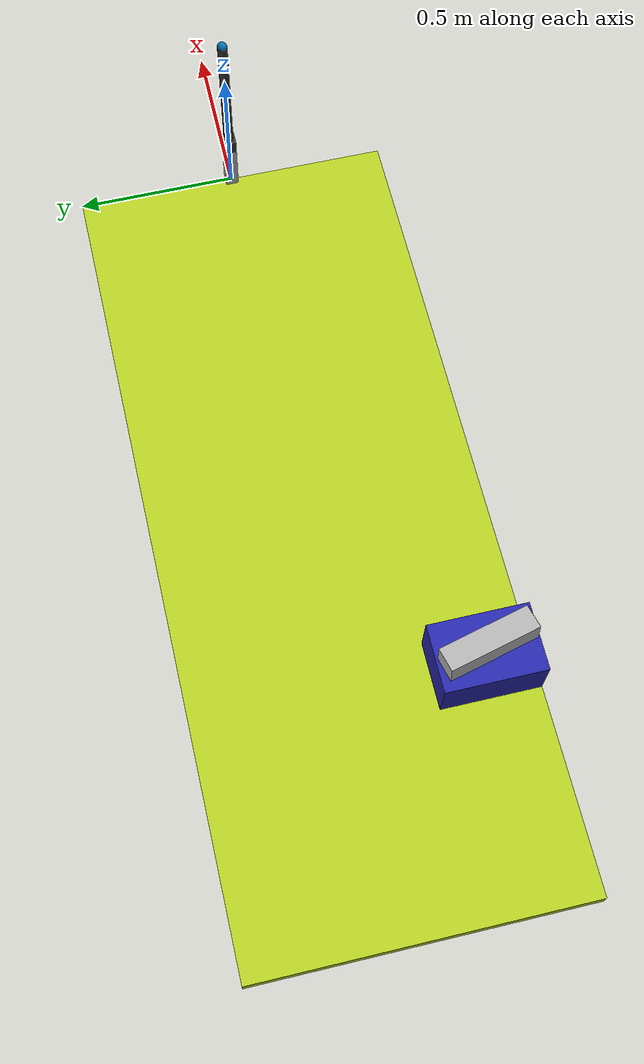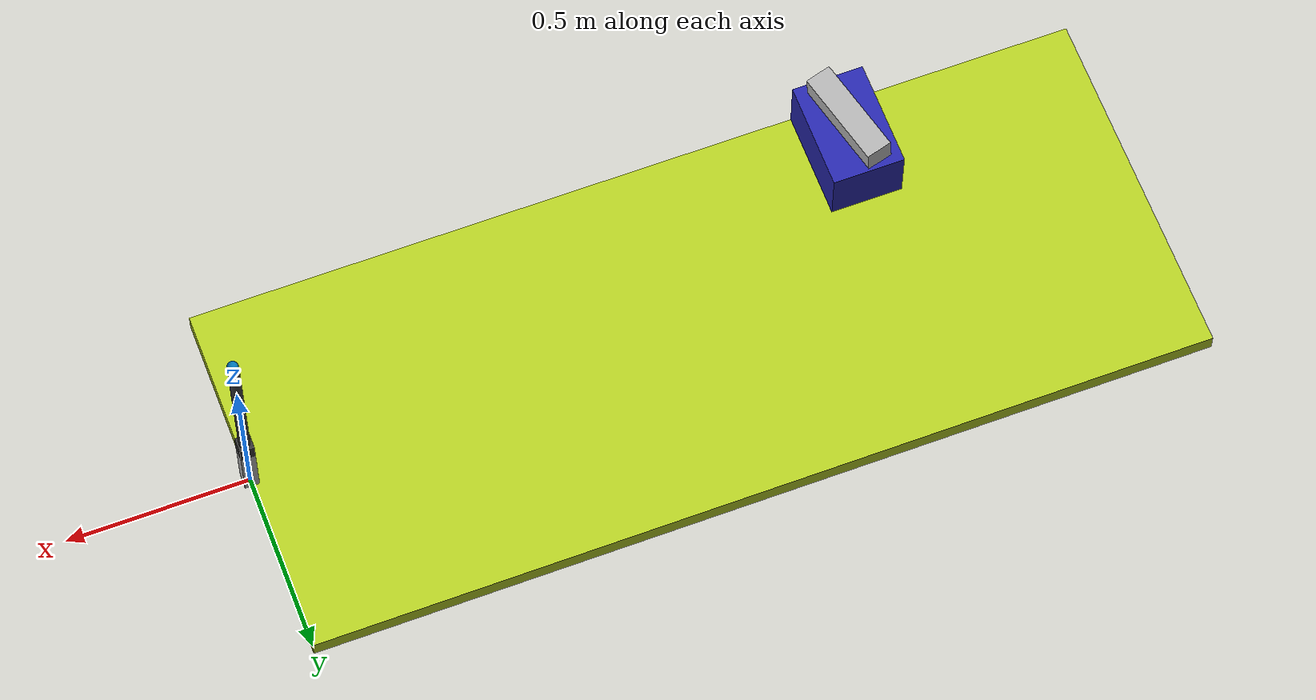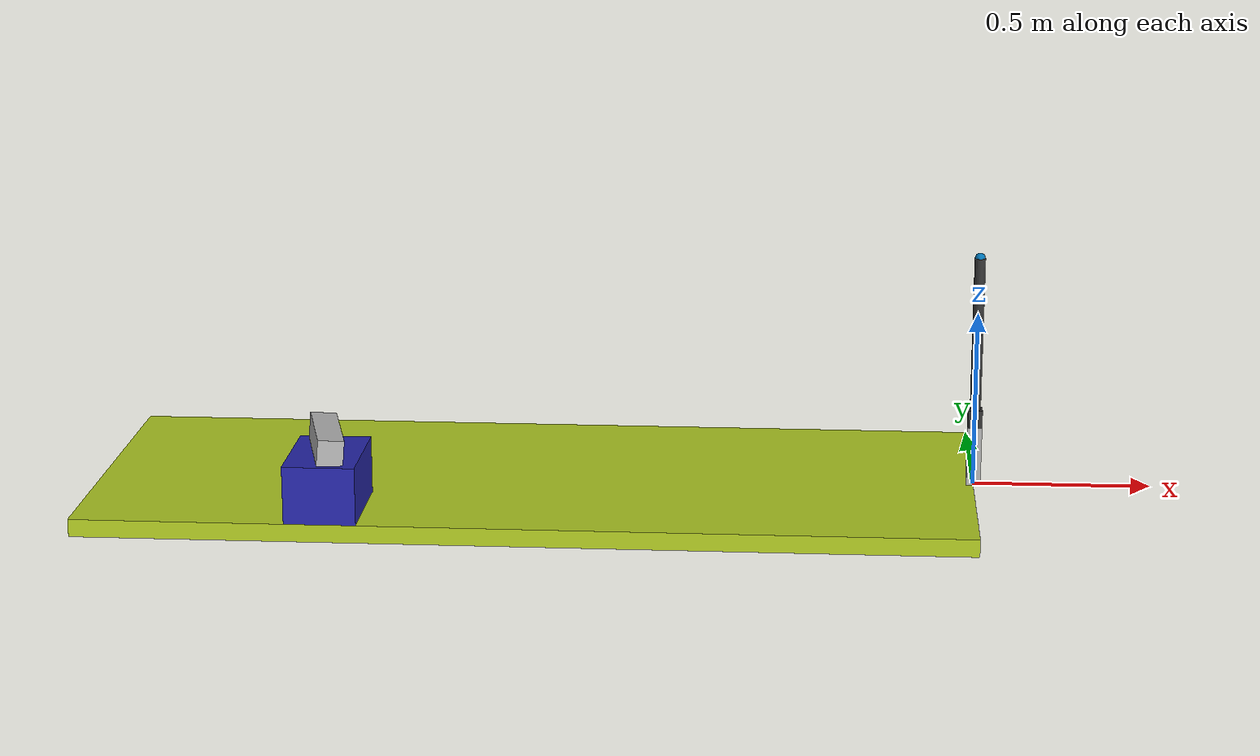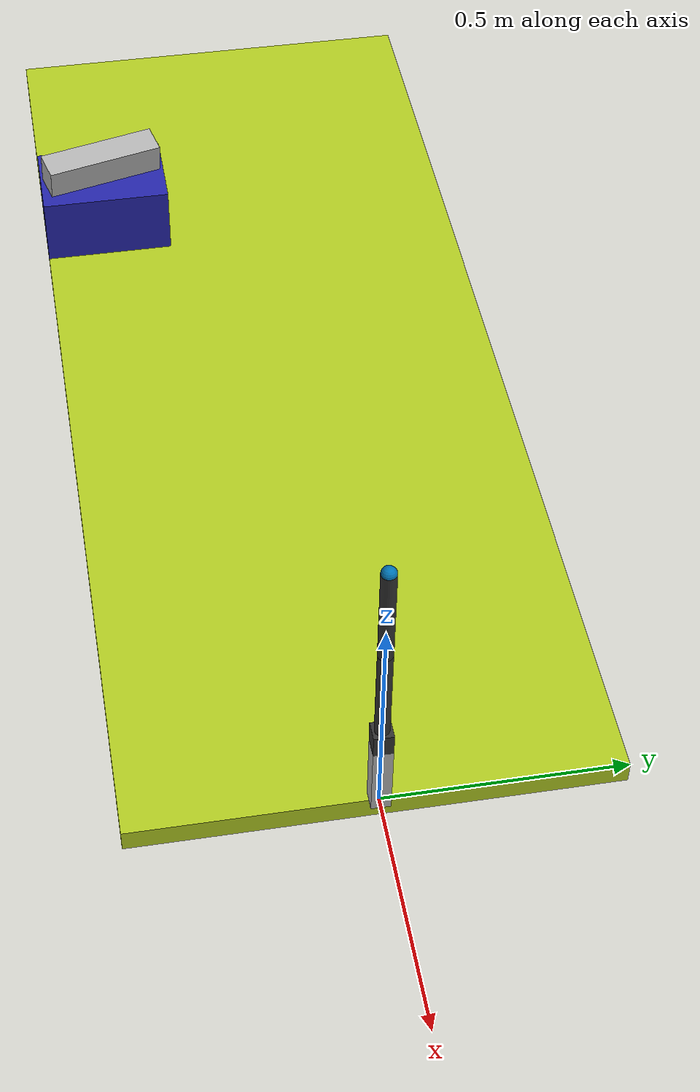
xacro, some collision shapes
<?xml version="1.0"?>
<robot name="icarus" xmlns:xacro="http://ros.org/wiki/xacro">

    <xacro:property name="M_PI" value="3.14159" />

    <!-- Robot Params -->
    <xacro:property name="base_width" value="0.04" />
    <xacro:property name="base_height" value="0.17" />
    <xacro:property name="link_radius" value="0.015" />
    <xacro:property name="link1_length" value="0.05" />
    <xacro:property name="link2_length" value="0.22" />
    <xacro:property name="link3_length" value="0.22" />

    <!-- Kinect Params -->
    <xacro:property name="cam_px" value="-1.8" />
    <xacro:property name="cam_py" value="-0.35" />
    <xacro:property name="cam_pz" value="0.2" />
    <xacro:property name="cam_or" value="0.0" />
    <xacro:property name="cam_op" value="${5.0*M_PI/180}" />
    <xacro:property name="cam_oy" value="0.244" />
    <xacro:property name="kinect_height" value="0.073" />

    <!-- Table Params -->
    <xacro:property name="table_thickness" value="0.05" />
    <xacro:property name="table_length" value="2.5" />
    <xacro:property name="table_width" value="1.0" />

    <!-- Macros -->
    <xacro:macro name="material_color" params="name rgba">
        <material name="${name}">
            <color rgba="${rgba}" />
        </material>
    </xacro:macro>

    <xacro:material_color name="default" rgba="0.7 0.7 0.7 1.0" />

    <!-- Robot Arm -->
    <link name="base_link">
        <visual>
            <origin xyz="0 0 ${base_height/2}" />
            <geometry>
                <box size="${base_width} ${base_width} ${base_height}" />
            </geometry>
            <material name="default" />
        </visual>
    </link>

    <joint name="base_to_link1" type="revolute">
        <axis xyz="0 0 1" rpy="0 0 ${M_PI}"/>
        <limit effort="1000.0" lower="${-M_PI/2}" upper="${M_PI/2}" velocity="0.5" />
        <origin xyz="0 0 ${base_height}" />
        <parent link="base_link" />
        <child link="link1" />
    </joint>

    <link name="link1">
        <visual>
            <origin xyz="0 0 ${link1_length/2}" />
            <geometry>
                <box size="0.04 0.04 ${link1_length}" />
            </geometry>
            <xacro:material_color name="black" rgba="0.2 0.2 0.2 1.0" />
        </visual>
    </link>

    <joint name="link1_to_link2" type="revolute">
        <axis xyz="0 1 0" />
        <limit effort="1000.0" lower="${-3/4*M_PI}" upper="${3/4*M_PI}" velocity="0.5" />
        <origin xyz="0 0 ${link1_length}" />
        <parent link="link1" />
        <child link="link2" />
    </joint>

    <link name="link2">
        <visual>
            <origin xyz="0 0 ${link2_length/2}" />
            <geometry>
                <cylinder radius="${link_radius}" length="${link2_length}" />
            </geometry>
            <material name="black" />
        </visual>
    </link>

    <joint name="link2_to_link3" type="revolute">
        <axis xyz="0 1 0" />
        <limit effort="1000.0" lower="${-3/4*M_PI}" upper="${3/4*M_PI}" velocity="0.5" />
        <origin xyz="0 0 ${link2_length}" />
        <parent link="link2" />
        <child link="link3" />
    </joint>

    <link name="link3">
        <visual>
            <origin xyz="0 0 ${link3_length/2}" />
            <geometry>
                <cylinder radius="${link_radius}" length="${link3_length}" />
            </geometry>
            <material name="black" />
        </visual>
    </link>

    <joint name="link3_to_ee_link" type="fixed">
        <origin xyz="0 0 ${link3_length}" />
        <parent link="link3" />
        <child link="ee_link" />
    </joint>

    <link name="ee_link">
        <visual>
            <origin xyz="0 0 0" />
            <geometry>
                <sphere radius="${link_radius}" />
            </geometry>
        </visual>
    </link>

    <!-- Kinect -->
    <joint name="base_to_kinect" type="fixed">
        <origin xyz="${cam_px} ${cam_py} ${cam_pz}" rpy="${cam_or} ${cam_op} ${cam_oy}"/>
        <parent link="base_link"/>
        <child link="kinect" />
    </joint>

    <link name="kinect" />

    <joint name="kinect_to_skeleton_frame" type="fixed">
        <origin xyz="0 0 0" rpy="${M_PI/2} 0 ${M_PI/2}" />
        <parent link="kinect" />
        <child link="skeleton_frame" />
    </joint>
    <link name="skeleton_frame" />

    <joint name="kinect_to_camera" type="fixed">
        <origin xyz="0 0 0" rpy="0 0 0"/>
        <parent link="kinect"/>
        <child link="camera"/>
    </joint>

    <link name="camera">
        <visual>
            <origin xyz="0 0 0" rpy="0 0 ${M_PI/2}"/>
            <geometry>
                <mesh filename="package://icarus_bringup/urdf/meshes/kinect.dae"/>
            </geometry>
        </visual>
        <collision>
            <origin xyz="0.0 0.0 0.0" rpy="0 0 0"/>
            <geometry>
                <box size="0.07271 0.27794 ${kinect_height}"/>
            </geometry>
        </collision>
        <inertial>
            <mass value="0.001" />
            <origin xyz="0 0 0" />
            <inertia ixx="0.0001" ixy="0.0" ixz="0.0"
                     iyy="0.0001" iyz="0.0"
                     izz="0.0001" />
        </inertial>
    </link>

    <!-- Table -->
    <joint name="base_to_table" type="fixed">
        <origin xyz="0 0 0" />
        <parent link="base_link" />
        <child link="table" />
    </joint>

    <link name="table">
        <visual>
            <origin xyz="${-table_length/2} 0 ${-table_thickness/2}" />
            <geometry>
                <box size="${table_length} ${table_width} ${table_thickness}"/>
            </geometry>
            <material name="yellow">
                <color rgba="0.7 0.8 0.137 1.0" />
            </material>
        </visual>
    </link>

    <joint name="base_to_support" type="fixed">
        <origin xyz="${cam_px} ${cam_py} ${cam_pz/2-kinect_height/4}" />
        <parent link="base_link" />
        <child link="support" />
    </joint>

    <link name="support">
        <visual>
            <origin xyz="0 0 0" />
            <geometry>
                <box size="0.2 0.3 ${cam_pz-kinect_height/2}"/>
            </geometry>
            <material name="blue">
                <color rgba="0.15 0.15 0.67 1.0" />
            </material>
        </visual>
    </link>

</robot>
